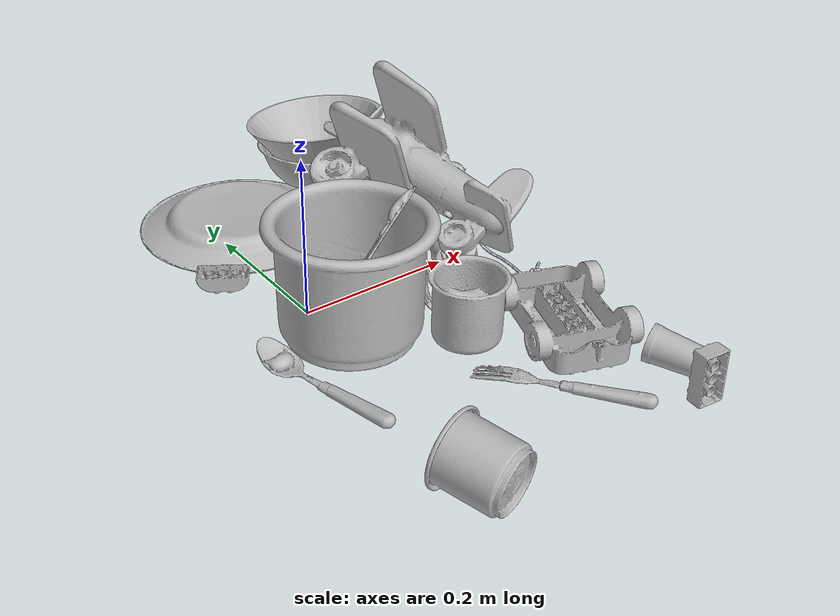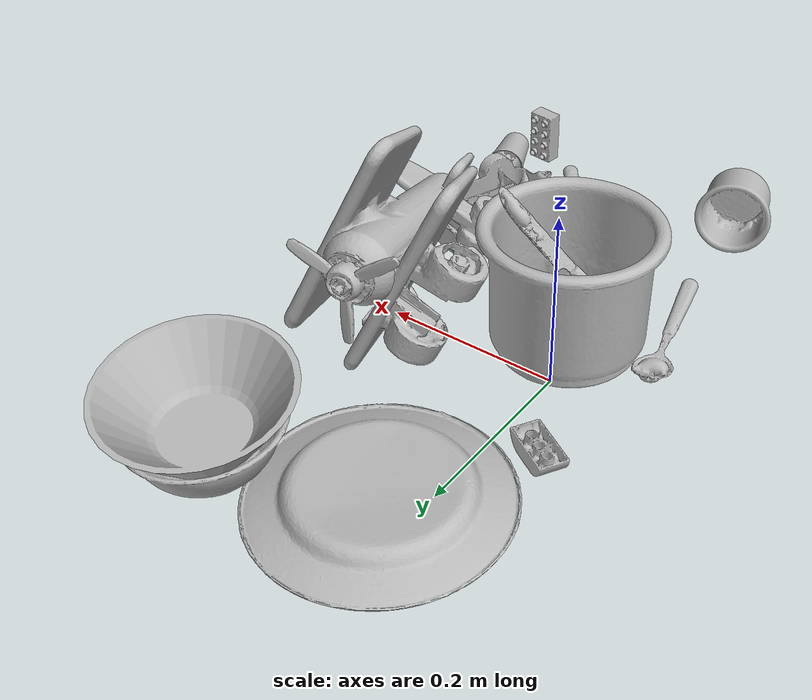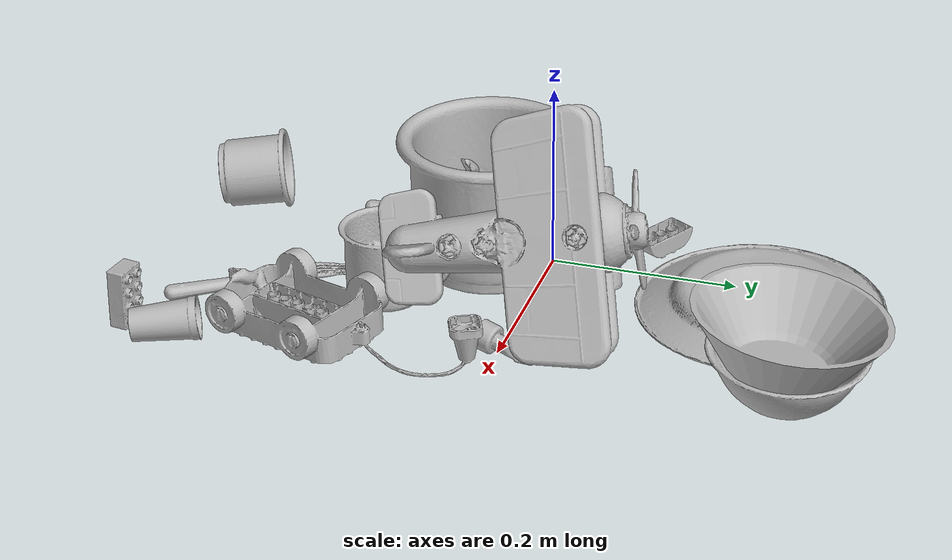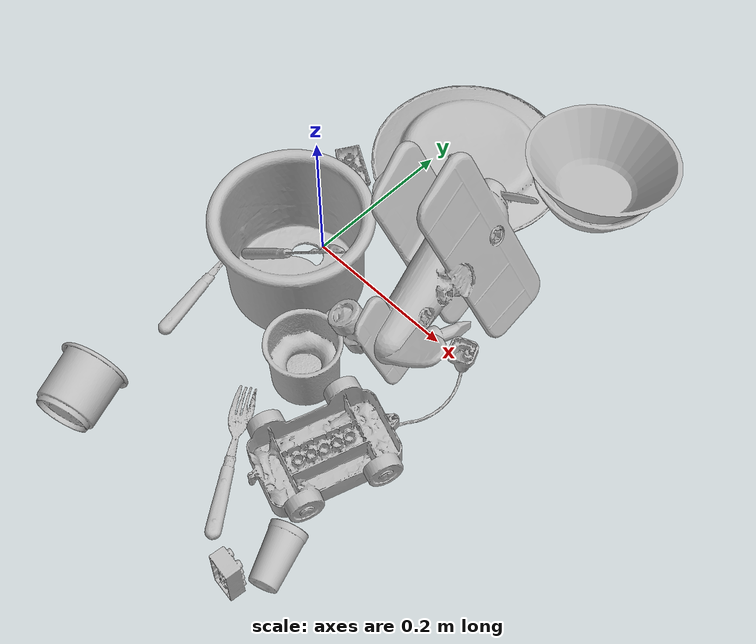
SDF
<sdf version="1.4">
  <world name="default">
    <light name="light1" type="point">
      <pose>0 0 1 0 0 0</pose>
      <diffuse>3 3 3 1</diffuse>
      <specular>3 3 3 1</specular>
    </light>
    <light name="light2" type="point">
      <pose>0 0.5 2 0 0 0</pose>
      <diffuse>1 1 1 1</diffuse>
      <specular>1 1 1 1</specular>
    </light>
    <light name="light3" type="point">
      <pose>0 0.5 2 0 0 0</pose>
      <diffuse>3 3 3 1</diffuse>
      <specular>3 3 3 1</specular>
    </light>
    <scene>
      <ambient>0.7 0.7 0.7</ambient>
    </scene>
    <model name="plate1">
      <link name="link_plate1">
        <collision name="default">
          <geometry>
            <mesh>
              <uri>model://plate/collision_meshes/collision.obj</uri>
              <scale>1.0 1.0 1.0</scale>
            </mesh>
          </geometry>
          <surface>
            <friction>
              <ode>
                <mu>0.5</mu>
                <mu2>0.5</mu2>
              </ode>
            </friction>
          <contact>
        <ode>
            <max_vel>0</max_vel>
            <min_depth>0.0001</min_depth>
            <kp>1e8</kp>
        </ode>
    </contact></surface>
        </collision>
        <visual name="default">
          <geometry>
            <mesh>
              <uri>model://plate/visual_meshes/visual.dae</uri>
              <scale>1.0 1.0 1.0</scale>
            </mesh>
          </geometry>
        </visual>
        <inertial>
          <mass>0.22833794355392456</mass>
          <pose>-0.000604461005423218 0.00027825840516015887 -0.0010561991948634386 0.0022188074693480237 -0.003225470002654536 0.4526028307495764</pose>
          <inertia>
            <ixx>0.0010681693</ixx>
            <iyy>0.0010579526</iyy>
            <izz>0.0020891798</izz>
            <ixy>0</ixy>
            <ixz>0</ixz>
            <iyz>0</iyz>
          </inertia>
        </inertial>
      </link>
      <pose>0.03733472898602486 0.2332521378993988 0.013451538980007172 3.141510876003464 -0.003190327270659213 1.0716856779571762</pose>
    </model>
    <model name="cup1">
      <link name="link_cup1">
        <collision name="default">
          <geometry>
            <mesh>
              <uri>model://i_cups/collision_meshes/collision.obj</uri>
              <scale>2.0 2.0 2.0</scale>
            </mesh>
          </geometry>
          <surface>
            <friction>
              <ode>
                <mu>0.5</mu>
                <mu2>0.5</mu2>
              </ode>
            </friction>
          <contact>
        <ode>
            <max_vel>0</max_vel>
            <min_depth>0.0001</min_depth>
            <kp>1e8</kp>
        </ode>
    </contact></surface>
        </collision>
        <visual name="default">
          <geometry>
            <mesh>
              <uri>model://i_cups/visual_meshes/visual.dae</uri>
              <scale>2.0 2.0 2.0</scale>
            </mesh>
          </geometry>
        </visual>
        <inertial>
          <mass>0.4681873917579651</mass>
          <pose>0.00022480281768366694 0.00033594679553061724 -0.001715805265121162 -0.028982833374769763 -0.039873302367341296 -0.3459182567321849</pose>
          <inertia>
            <ixx>0.0025928493</ixx>
            <iyy>0.0026156942</iyy>
            <izz>0.0028979292</izz>
            <ixy>0</ixy>
            <ixz>0</ixz>
            <iyz>0</iyz>
          </inertia>
        </inertial>
      </link>
      <pose>0.020470311865210533 -0.06308459490537643 0.07555119693279266 0.0018078667458725638 -0.00642772558105843 1.6260265640956928</pose>
    </model>
    <model name="silverware1">
      <link name="link_silverware1">
        <collision name="default">
          <geometry>
            <mesh>
              <uri>model://fork/collision_meshes/collision.obj</uri>
              <scale>1.0 1.0 1.0</scale>
            </mesh>
          </geometry>
          <surface>
            <friction>
              <ode>
                <mu>0.5</mu>
                <mu2>0.5</mu2>
              </ode>
            </friction>
          <contact>
        <ode>
            <max_vel>0</max_vel>
            <min_depth>0.0001</min_depth>
            <kp>1e8</kp>
        </ode>
    </contact></surface>
        </collision>
        <visual name="default">
          <geometry>
            <mesh>
              <uri>model://fork/visual_meshes/visual.dae</uri>
              <scale>1.0 1.0 1.0</scale>
            </mesh>
          </geometry>
        </visual>
        <inertial>
          <mass>0.027571624144911766</mass>
          <pose>-0.02957003377377987 0.00046588233090005815 0.00032188609475269914 -0.013550958023284024 -0.010977835737993834 0.014453901364285019</pose>
          <inertia>
            <ixx>9.665413e-07</ixx>
            <iyy>7.198156e-05</iyy>
            <izz>7.24139e-05</izz>
            <ixy>0</ixy>
            <ixz>0</ixz>
            <iyz>0</iyz>
          </inertia>
        </inertial>
      </link>
      <pose>0.14192548394203186 -0.28254058957099915 0.007446602452546358 -3.0634990841688188 0.00283595459155406 2.204121402329674</pose>
    </model>
    <model name="silverware2">
      <link name="link_silverware2">
        <collision name="default">
          <geometry>
            <mesh>
              <uri>model://spoon/collision_meshes/collision.obj</uri>
              <scale>1.0 1.0 1.0</scale>
            </mesh>
          </geometry>
          <surface>
            <friction>
              <ode>
                <mu>0.5</mu>
                <mu2>0.5</mu2>
              </ode>
            </friction>
          <contact>
        <ode>
            <max_vel>0</max_vel>
            <min_depth>0.0001</min_depth>
            <kp>1e8</kp>
        </ode>
    </contact></surface>
        </collision>
        <visual name="default">
          <geometry>
            <mesh>
              <uri>model://spoon/visual_meshes/visual.dae</uri>
              <scale>1.0 1.0 1.0</scale>
            </mesh>
          </geometry>
        </visual>
        <inertial>
          <mass>0.026229728013277054</mass>
          <pose>-0.005526318680495024 -0.001603417913429439 -0.0007271656068041921 0.03521671072465583 -0.039065837568760656 0.006150610113583586</pose>
          <inertia>
            <ixx>1.4589405e-06</ixx>
            <iyy>9.980327e-05</iyy>
            <izz>0.00010052276</izz>
            <ixy>0</ixy>
            <ixz>0</ixz>
            <iyz>0</iyz>
          </inertia>
        </inertial>
      </link>
      <pose>-0.06641104817390442 -0.1337955892086029 0.008385121822357178 0.0065879439717059975 0.02689190056828018 1.7926325901431537</pose>
    </model>
    <model name="silverware3">
      <link name="link_silverware3">
        <collision name="default">
          <geometry>
            <mesh>
              <uri>model://knife/collision_meshes/collision.obj</uri>
              <scale>1.0 1.0 1.0</scale>
            </mesh>
          </geometry>
          <surface>
            <friction>
              <ode>
                <mu>0.5</mu>
                <mu2>0.5</mu2>
              </ode>
            </friction>
          <contact>
        <ode>
            <max_vel>0</max_vel>
            <min_depth>0.0001</min_depth>
            <kp>1e8</kp>
        </ode>
    </contact></surface>
        </collision>
        <visual name="default">
          <geometry>
            <mesh>
              <uri>model://knife/visual_meshes/visual.dae</uri>
              <scale>1.0 1.0 1.0</scale>
            </mesh>
          </geometry>
        </visual>
        <inertial>
          <mass>0.02346421591937542</mass>
          <pose>-0.02378525584936142 0.0015275125624611974 5.062017953605391e-05 0.07305400797241687 0.017248417900584085 -0.007409820985288758</pose>
          <inertia>
            <ixx>6.6600956e-07</ixx>
            <iyy>9.0145724e-05</iyy>
            <izz>9.036023e-05</izz>
            <ixy>0</ixy>
            <ixz>0</ixz>
            <iyz>0</iyz>
          </inertia>
        </inertial>
      </link>
      <pose>0.029842181131243706 -0.07243448495864868 0.0905759409070015 2.410450482404548 -0.7125715499187482 0.146152087648369</pose>
    </model>
    <model name="cup3">
      <link name="link_cup3">
        <collision name="default">
          <geometry>
            <mesh>
              <uri>model://g_cups/collision_meshes/collision.obj</uri>
              <scale>1.0 1.0 1.0</scale>
            </mesh>
          </geometry>
          <surface>
            <friction>
              <ode>
                <mu>0.5</mu>
                <mu2>0.5</mu2>
              </ode>
            </friction>
          <contact>
        <ode>
            <max_vel>0</max_vel>
            <min_depth>0.0001</min_depth>
            <kp>1e8</kp>
        </ode>
    </contact></surface>
        </collision>
        <visual name="default">
          <geometry>
            <mesh>
              <uri>model://g_cups/visual_meshes/visual.dae</uri>
              <scale>1.0 1.0 1.0</scale>
            </mesh>
          </geometry>
        </visual>
        <inertial>
          <mass>0.061065707355737686</mass>
          <pose>-0.0007946277037262917 -4.2064726585522294e-05 -0.002132938476279378 -0.21381528234109023 -0.31410608856426947 0.31118675593786127</pose>
          <inertia>
            <ixx>7.1277376e-05</ixx>
            <iyy>7.10349e-05</iyy>
            <izz>7.383109e-05</izz>
            <ixy>0</ixy>
            <ixz>0</ixz>
            <iyz>0</iyz>
          </inertia>
        </inertial>
      </link>
      <pose>-0.03240332007408142 -0.3548184931278229 0.04004662483930588 -1.4001398025217089 -0.9631695016939016 0.17014166392396793</pose>
    </model>
    <model name="cup4">
      <link name="link_cup4">
        <collision name="default">
          <geometry>
            <mesh>
              <uri>model://mug/collision_meshes/collision.obj</uri>
              <scale>1.0 1.0 1.0</scale>
            </mesh>
          </geometry>
          <surface>
            <friction>
              <ode>
                <mu>0.5</mu>
                <mu2>0.5</mu2>
              </ode>
            </friction>
          <contact>
        <ode>
            <max_vel>0</max_vel>
            <min_depth>0.0001</min_depth>
            <kp>1e8</kp>
        </ode>
    </contact></surface>
        </collision>
        <visual name="default">
          <geometry>
            <mesh>
              <uri>model://mug/visual_meshes/visual.dae</uri>
              <scale>1.0 1.0 1.0</scale>
            </mesh>
          </geometry>
        </visual>
        <inertial>
          <mass>0.23807048797607422</mass>
          <pose>0.009571674279868603 0.0008143257582560182 -0.010947330854833126 -0.1298314387661624 0.08737745525079747 0.05507303490292968</pose>
          <inertia>
            <ixx>0.00023648023</ixx>
            <iyy>0.0002641344</iyy>
            <izz>0.00030547503</izz>
            <ixy>0</ixy>
            <ixz>0</ixz>
            <iyz>0</iyz>
          </inertia>
        </inertial>
      </link>
      <pose>0.12011219561100006 -0.13458143174648285 0.04094967991113663 2.8383939001531294e-05 3.796613388529252e-05 -1.3863104321932656</pose>
    </model>
    <model name="cup5">
      <link name="link_cup5">
        <collision name="default">
          <geometry>
            <mesh>
              <uri>model://cup_small/collision_meshes/collision.obj</uri>
              <scale>1.0 1.0 1.0</scale>
            </mesh>
          </geometry>
          <surface>
            <friction>
              <ode>
                <mu>0.5</mu>
                <mu2>0.5</mu2>
              </ode>
            </friction>
          <contact>
        <ode>
            <max_vel>0</max_vel>
            <min_depth>0.0001</min_depth>
            <kp>1e8</kp>
        </ode>
    </contact></surface>
        </collision>
        <visual name="default">
          <geometry>
            <mesh>
              <uri>model://cup_small/visual_meshes/visual.dae</uri>
              <scale>1.0 1.0 1.0</scale>
            </mesh>
          </geometry>
        </visual>
        <inertial>
          <mass>0.034257128834724426</mass>
          <pose>0.00010482469951966777 -0.00033778377110138535 -0.01074282731860876 -0.011493012610900502 -0.015280351102743797 -0.5058271067899499</pose>
          <inertia>
            <ixx>2.0170073e-05</ixx>
            <iyy>2.0274121e-05</iyy>
            <izz>9.106847e-06</izz>
            <ixy>0</ixy>
            <ixz>0</ixz>
            <iyz>0</iyz>
          </inertia>
        </inertial>
      </link>
      <pose>0.27043595910072327 -0.32839295268058777 0.02030165120959282 1.4541862541768944 -0.8407305761630386 -2.678401462783959</pose>
    </model>
    <model name="bowl1">
      <link name="link_bowl1">
        <collision name="default">
          <geometry>
            <mesh>
              <uri>model://bowl/collision_meshes/collision.obj</uri>
              <scale>1.0 1.0 1.0</scale>
            </mesh>
          </geometry>
          <surface>
            <friction>
              <ode>
                <mu>0.5</mu>
                <mu2>0.5</mu2>
              </ode>
            </friction>
          <contact>
        <ode>
            <max_vel>0</max_vel>
            <min_depth>0.0001</min_depth>
            <kp>1e8</kp>
        </ode>
    </contact></surface>
        </collision>
        <visual name="default">
          <geometry>
            <mesh>
              <uri>model://bowl/visual_meshes/visual.dae</uri>
              <scale>1.0 1.0 1.0</scale>
            </mesh>
          </geometry>
        </visual>
        <inertial>
          <mass>0.06465846300125122</mass>
          <pose>0.0002044529392151162 -0.0010302059818059206 -0.0008042643894441426 -0.015764115524798613 0.014546769889283702 0.7140385686011532</pose>
          <inertia>
            <ixx>0.00014852564</ixx>
            <iyy>0.000145207</iyy>
            <izz>0.00024987117</izz>
            <ixy>0</ixy>
            <ixz>0</ixz>
            <iyz>0</iyz>
          </inertia>
        </inertial>
      </link>
      <pose>0.1957726627588272 0.2908666431903839 0.030830899253487587 -0.04706222340263772 0.05238655360983308 -0.4440270799729655</pose>
    </model>
    <model name="bowl2">
      <link name="link_bowl2">
        <collision name="default">
          <geometry>
            <mesh>
              <uri>model://bowl_a/collision_meshes/collision.obj</uri>
              <scale>1.0 1.0 1.0</scale>
            </mesh>
          </geometry>
          <surface>
            <friction>
              <ode>
                <mu>0.5</mu>
                <mu2>0.5</mu2>
              </ode>
            </friction>
          <contact>
        <ode>
            <max_vel>0</max_vel>
            <min_depth>0.0001</min_depth>
            <kp>1e8</kp>
        </ode>
    </contact></surface>
        </collision>
        <visual name="default">
          <geometry>
            <mesh>
              <uri>model://bowl_a/visual_meshes/visual.dae</uri>
              <scale>1.0 1.0 1.0</scale>
            </mesh>
          </geometry>
        </visual>
        <inertial>
          <mass>0.4949932396411896</mass>
          <pose>0.00027867621975019574 4.730939326691441e-05 -0.0013765293406322598 -0.0009805412802391578 -0.001093824733375575 -0.19123603072484788</pose>
          <inertia>
            <ixx>0.0014092687</ixx>
            <iyy>0.0014179207</iyy>
            <izz>0.0025064375</izz>
            <ixy>0</ixy>
            <ixz>0</ixz>
            <iyz>0</iyz>
          </inertia>
        </inertial>
      </link>
      <pose>0.20271766185760498 0.28957629203796387 0.06609830260276794 -0.10438337346163869 0.04594162768018815 0.7357966664369785</pose>
    </model>
    <model name="toy1">
      <link name="link_toy1">
        <collision name="default">
          <geometry>
            <mesh>
              <uri>model://a_toy_airplane/collision_meshes/collision.obj</uri>
              <scale>1.0 1.0 1.0</scale>
            </mesh>
          </geometry>
          <surface>
            <friction>
              <ode>
                <mu>0.5</mu>
                <mu2>0.5</mu2>
              </ode>
            </friction>
          <contact>
        <ode>
            <max_vel>0</max_vel>
            <min_depth>0.0001</min_depth>
            <kp>1e8</kp>
        </ode>
    </contact></surface>
        </collision>
        <visual name="default">
          <geometry>
            <mesh>
              <uri>model://a_toy_airplane/visual_meshes/visual.dae</uri>
              <scale>1.0 1.0 1.0</scale>
            </mesh>
          </geometry>
        </visual>
        <inertial>
          <mass>1.5726872682571411</mass>
          <pose>0.025165090337395668 -0.003707318101078272 -0.0011962441494688392 -0.012016975653996446 -0.14663502644886817 0.00414906395026872</pose>
          <inertia>
            <ixx>0.0057111816</ixx>
            <iyy>0.008322349</iyy>
            <izz>0.009744448</izz>
            <ixy>0</ixy>
            <ixz>0</ixz>
            <iyz>0</iyz>
          </inertia>
        </inertial>
      </link>
      <pose>0.17812024056911469 0.009658308699727058 0.12287883460521698 1.1179794715043763 -0.05546261763831728 1.9459536598914788</pose>
    </model>
    <model name="toy2">
      <link name="link_toy2">
        <collision name="default">
          <geometry>
            <mesh>
              <uri>model://g_lego_duplo/collision_meshes/collision.obj</uri>
              <scale>1.0 1.0 1.0</scale>
            </mesh>
          </geometry>
          <surface>
            <friction>
              <ode>
                <mu>0.5</mu>
                <mu2>0.5</mu2>
              </ode>
            </friction>
          <contact>
        <ode>
            <max_vel>0</max_vel>
            <min_depth>0.0001</min_depth>
            <kp>1e8</kp>
        </ode>
    </contact></surface>
        </collision>
        <visual name="default">
          <geometry>
            <mesh>
              <uri>model://g_lego_duplo/visual_meshes/visual.dae</uri>
              <scale>1.0 1.0 1.0</scale>
            </mesh>
          </geometry>
        </visual>
        <inertial>
          <mass>0.27239978313446045</mass>
          <pose>-0.05004768446087837 0.0017554647056385875 0.003880675882101059 0.010962999716487856 0.03810827607734427 -0.09653019061870628</pose>
          <inertia>
            <ixx>0.00039471043</ixx>
            <iyy>0.0011933373</iyy>
            <izz>0.0014929089</izz>
            <ixy>0</ixy>
            <ixz>0</ixz>
            <iyz>0</iyz>
          </inertia>
        </inertial>
      </link>
      <pose>0.2341841161251068 -0.14760631322860718 0.027629006654024124 -3.1415919412631546 -0.030279711451780617 1.2329497309711253</pose>
    </model>
    <model name="toy3">
      <link name="link_toy3">
        <collision name="default">
          <geometry>
            <mesh>
              <uri>model://e_toy_airplane/collision_meshes/collision.obj</uri>
              <scale>1.0 1.0 1.0</scale>
            </mesh>
          </geometry>
          <surface>
            <friction>
              <ode>
                <mu>0.5</mu>
                <mu2>0.5</mu2>
              </ode>
            </friction>
          <contact>
        <ode>
            <max_vel>0</max_vel>
            <min_depth>0.0001</min_depth>
            <kp>1e8</kp>
        </ode>
    </contact></surface>
        </collision>
        <visual name="default">
          <geometry>
            <mesh>
              <uri>model://e_toy_airplane/visual_meshes/visual.dae</uri>
              <scale>1.0 1.0 1.0</scale>
            </mesh>
          </geometry>
        </visual>
        <inertial>
          <mass>0.02767481654882431</mass>
          <pose>0.00011740472837118432 -2.2482989152194932e-05 -0.011187202297151089 0.005518508312800945 0.009228282632666047 0.1504154330375105</pose>
          <inertia>
            <ixx>8.446671e-06</ixx>
            <iyy>8.360266e-06</iyy>
            <izz>2.5385568e-06</izz>
            <ixy>0</ixy>
            <ixz>0</ixz>
            <iyz>0</iyz>
          </inertia>
        </inertial>
      </link>
      <pose>0.20550553500652313 0.01169633399695158 0.012364774011075497 1.7532846988114623 0.37558031281553894 2.9220944652689207</pose>
    </model>
    <model name="toy4">
      <link name="link_toy4">
        <collision name="default">
          <geometry>
            <mesh>
              <uri>model://c_lego_duplo/collision_meshes/collision.obj</uri>
              <scale>1.0 1.0 1.0</scale>
            </mesh>
          </geometry>
          <surface>
            <friction>
              <ode>
                <mu>0.5</mu>
                <mu2>0.5</mu2>
              </ode>
            </friction>
          <contact>
        <ode>
            <max_vel>0</max_vel>
            <min_depth>0.0001</min_depth>
            <kp>1e8</kp>
        </ode>
    </contact></surface>
        </collision>
        <visual name="default">
          <geometry>
            <mesh>
              <uri>model://c_lego_duplo/visual_meshes/visual.dae</uri>
              <scale>1.0 1.0 1.0</scale>
            </mesh>
          </geometry>
        </visual>
        <inertial>
          <mass>0.027596205472946167</mass>
          <pose>0.0003164597146678716 0.00019464619981590658 0.0010453155264258385 -0.011520800817134696 0.005900104067849837 0.03110033537421094</pose>
          <inertia>
            <ixx>1.0619538e-05</ixx>
            <iyy>3.3922634e-06</iyy>
            <izz>1.2410018e-05</izz>
            <ixy>0</ixy>
            <ixz>0</ixz>
            <iyz>0</iyz>
          </inertia>
        </inertial>
      </link>
      <pose>0.25203195214271545 -0.378260999917984 0.03213169425725937 1.5893630759317257 0.03522419112104667 3.0169457312845367</pose>
    </model>
    <model name="toy5">
      <link name="link_toy5">
        <collision name="default">
          <geometry>
            <mesh>
              <uri>model://a_lego_duplo/collision_meshes/collision.obj</uri>
              <scale>1.0 1.0 1.0</scale>
            </mesh>
          </geometry>
          <surface>
            <friction>
              <ode>
                <mu>0.5</mu>
                <mu2>0.5</mu2>
              </ode>
            </friction>
          <contact>
        <ode>
            <max_vel>0</max_vel>
            <min_depth>0.0001</min_depth>
            <kp>1e8</kp>
        </ode>
    </contact></surface>
        </collision>
        <visual name="default">
          <geometry>
            <mesh>
              <uri>model://a_lego_duplo/visual_meshes/visual.dae</uri>
              <scale>1.0 1.0 1.0</scale>
            </mesh>
          </geometry>
        </visual>
        <inertial>
          <mass>0.011767913587391376</mass>
          <pose>-0.00011337622709106654 0.00018517576972953975 0.0003692608152050525 -0.0141170192796563 -0.00012565406274383194 6.140908251533293e-05</pose>
          <inertia>
            <ixx>1.5087408e-06</ixx>
            <iyy>3.3799095e-06</iyy>
            <izz>4.186769e-06</izz>
            <ixy>0</ixy>
            <ixz>0</ixz>
            <iyz>0</iyz>
          </inertia>
        </inertial>
      </link>
      <pose>-0.05348345637321472 0.10598181933164597 0.012124801985919476 -3.1412820137531643 -0.015583411163645273 2.596969054072112</pose>
    </model>
  <physics type="ode">
      <max_contacts>50</max_contacts>
      <ode>
        <solver>
          <type>quick</type>
          <iters>75</iters>
        </solver>
        <constraints>
          <contact_max_correcting_vel>0</contact_max_correcting_vel>
          <contact_surface_layer>0</contact_surface_layer>
        </constraints>
      </ode>
    </physics></world>
</sdf>
